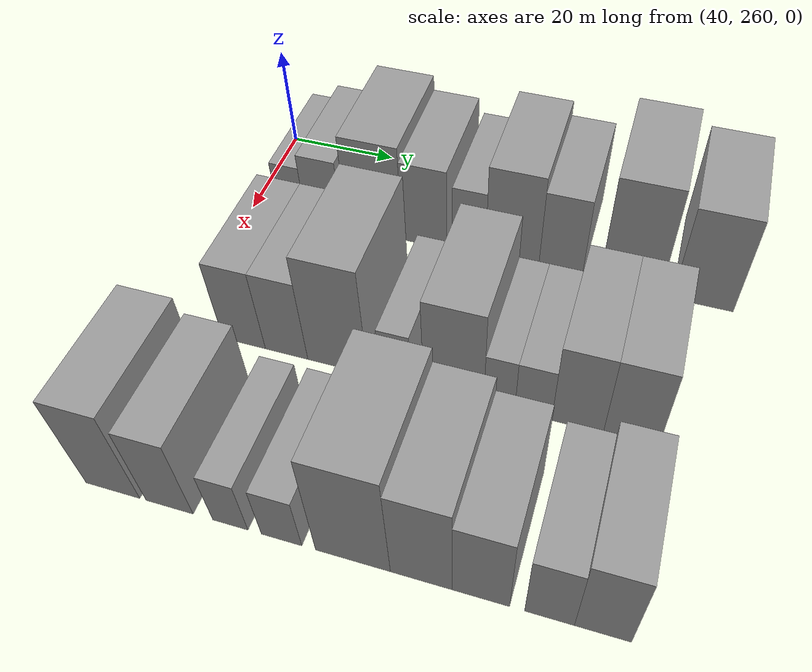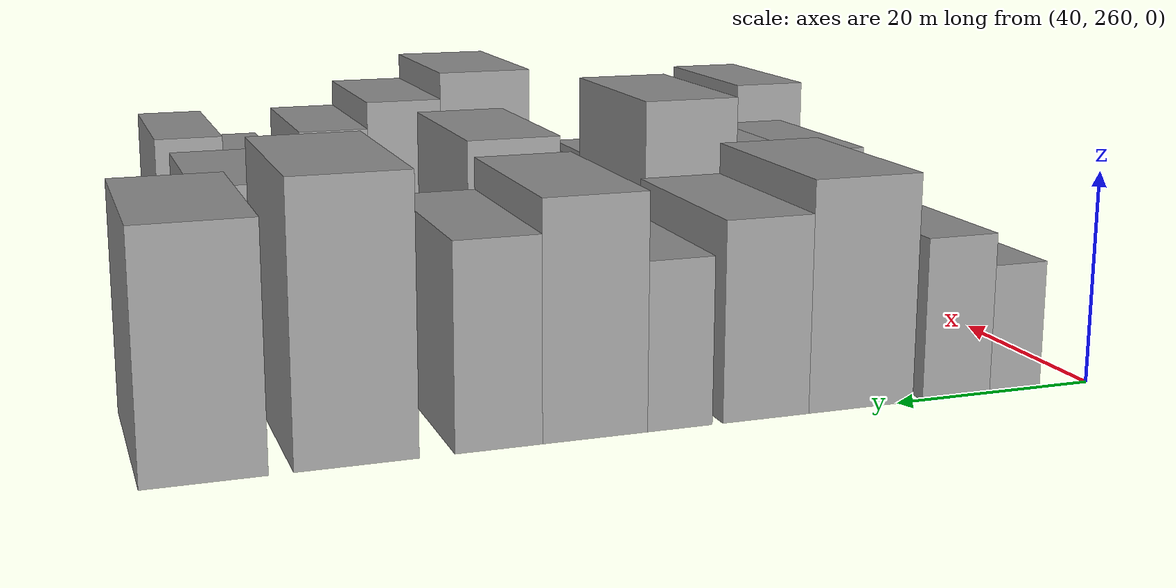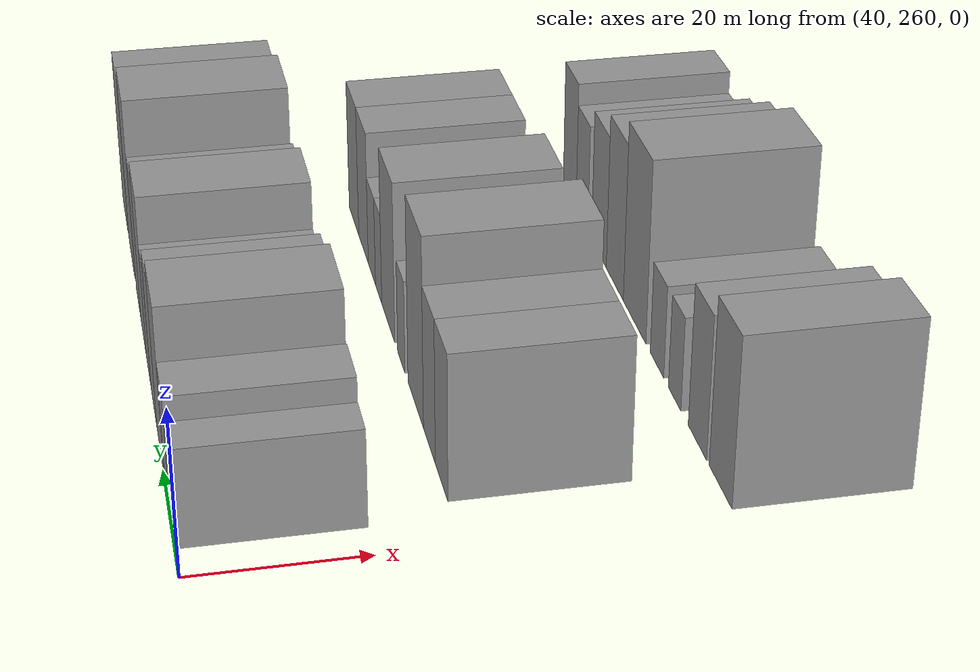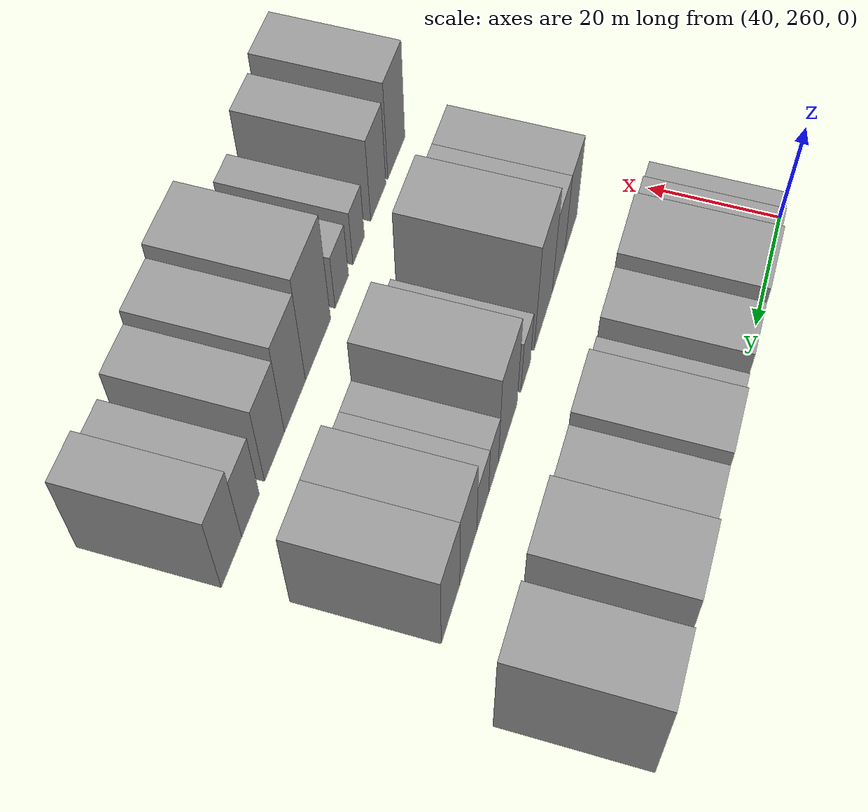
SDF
<sdf version="1.6">
 <world name="default">
  <model name="building_67">
   <static>1</static>
   <pose>50.0000 267.7553 0 0.000000 0.000000 0.000000</pose>
   <link name="link">
    <pose>0 0 6.00 0 0 0</pose>
    <collision name="collision"><geometry><box><size>20.0000 5.3422 12.0000</size></box></geometry></collision>
    <visual name="visual">
     <cast_shadows>0</cast_shadows>
     <geometry><box><size>20.0000 5.3422 12.0000</size></box></geometry>
     <material>
      <script>
       <uri>model://grey_wall/materials/scripts</uri>
       <uri>model://grey_wall/materials/textures</uri>
       <name>vrc/grey_wall</name>
      </script>
     </material>
    </visual>
   </link>
  </model>
  <model name="building_68">
   <static>1</static>
   <pose>50.0000 273.9213 0 0.000000 0.000000 0.000000</pose>
   <link name="link">
    <pose>0 0 7.50 0 0 0</pose>
    <collision name="collision"><geometry><box><size>20.0000 6.9897 15.0000</size></box></geometry></collision>
    <visual name="visual">
     <cast_shadows>0</cast_shadows>
     <geometry><box><size>20.0000 6.9897 15.0000</size></box></geometry>
     <material>
      <script>
       <uri>model://grey_wall/materials/scripts</uri>
       <uri>model://grey_wall/materials/textures</uri>
       <name>vrc/grey_wall</name>
      </script>
     </material>
    </visual>
   </link>
  </model>
  <model name="building_69">
   <static>1</static>
   <pose>50.0000 283.6248 0 0.000000 0.000000 0.000000</pose>
   <link name="link">
    <pose>0 0 10.50 0 0 0</pose>
    <collision name="collision"><geometry><box><size>20.0000 10.4175 21.0000</size></box></geometry></collision>
    <visual name="visual">
     <cast_shadows>0</cast_shadows>
     <geometry><box><size>20.0000 10.4175 21.0000</size></box></geometry>
     <material>
      <script>
       <uri>model://grey_wall/materials/scripts</uri>
       <uri>model://grey_wall/materials/textures</uri>
       <name>vrc/grey_wall</name>
      </script>
     </material>
    </visual>
   </link>
  </model>
  <model name="building_70">
   <static>1</static>
   <pose>50.0000 292.9698 0 0.000000 0.000000 0.000000</pose>
   <link name="link">
    <pose>0 0 9.00 0 0 0</pose>
    <collision name="collision"><geometry><box><size>20.0000 8.2724 18.0000</size></box></geometry></collision>
    <visual name="visual">
     <cast_shadows>0</cast_shadows>
     <geometry><box><size>20.0000 8.2724 18.0000</size></box></geometry>
     <material>
      <script>
       <uri>model://grey_wall/materials/scripts</uri>
       <uri>model://grey_wall/materials/textures</uri>
       <name>vrc/grey_wall</name>
      </script>
     </material>
    </visual>
   </link>
  </model>
  <model name="building_71">
   <static>1</static>
   <pose>50.0000 301.1170 0 0.000000 0.000000 0.000000</pose>
   <link name="link">
    <pose>0 0 7.50 0 0 0</pose>
    <collision name="collision"><geometry><box><size>20.0000 6.0219 15.0000</size></box></geometry></collision>
    <visual name="visual">
     <cast_shadows>0</cast_shadows>
     <geometry><box><size>20.0000 6.0219 15.0000</size></box></geometry>
     <material>
      <script>
       <uri>model://grey_wall/materials/scripts</uri>
       <uri>model://grey_wall/materials/textures</uri>
       <name>vrc/grey_wall</name>
      </script>
     </material>
    </visual>
   </link>
  </model>
  <model name="building_72">
   <static>1</static>
   <pose>50.0000 308.8491 0 0.000000 0.000000 0.000000</pose>
   <link name="link">
    <pose>0 0 10.50 0 0 0</pose>
    <collision name="collision"><geometry><box><size>20.0000 9.4423 21.0000</size></box></geometry></collision>
    <visual name="visual">
     <cast_shadows>0</cast_shadows>
     <geometry><box><size>20.0000 9.4423 21.0000</size></box></geometry>
     <material>
      <script>
       <uri>model://grey_wall/materials/scripts</uri>
       <uri>model://grey_wall/materials/textures</uri>
       <name>vrc/grey_wall</name>
      </script>
     </material>
    </visual>
   </link>
  </model>
  <model name="building_73">
   <static>1</static>
   <pose>50.0000 317.3691 0 0.000000 0.000000 0.000000</pose>
   <link name="link">
    <pose>0 0 9.00 0 0 0</pose>
    <collision name="collision"><geometry><box><size>20.0000 7.5978 18.0000</size></box></geometry></collision>
    <visual name="visual">
     <cast_shadows>0</cast_shadows>
     <geometry><box><size>20.0000 7.5978 18.0000</size></box></geometry>
     <material>
      <script>
       <uri>model://grey_wall/materials/scripts</uri>
       <uri>model://grey_wall/materials/textures</uri>
       <name>vrc/grey_wall</name>
      </script>
     </material>
    </visual>
   </link>
  </model>
  <model name="building_74">
   <static>1</static>
   <pose>50.0000 329.3266 0 0.000000 0.000000 0.000000</pose>
   <link name="link">
    <pose>0 0 12.00 0 0 0</pose>
    <collision name="collision"><geometry><box><size>20.0000 10.3170 24.0000</size></box></geometry></collision>
    <visual name="visual">
     <cast_shadows>0</cast_shadows>
     <geometry><box><size>20.0000 10.3170 24.0000</size></box></geometry>
     <material>
      <script>
       <uri>model://grey_wall/materials/scripts</uri>
       <uri>model://grey_wall/materials/textures</uri>
       <name>vrc/grey_wall</name>
      </script>
     </material>
    </visual>
   </link>
  </model>
  <model name="building_75">
   <static>1</static>
   <pose>50.0000 341.5349 0 0.000000 0.000000 0.000000</pose>
   <link name="link">
    <pose>0 0 10.50 0 0 0</pose>
    <collision name="collision"><geometry><box><size>20.0000 10.0997 21.0000</size></box></geometry></collision>
    <visual name="visual">
     <cast_shadows>0</cast_shadows>
     <geometry><box><size>20.0000 10.0997 21.0000</size></box></geometry>
     <material>
      <script>
       <uri>model://grey_wall/materials/scripts</uri>
       <uri>model://grey_wall/materials/textures</uri>
       <name>vrc/grey_wall</name>
      </script>
     </material>
    </visual>
   </link>
  </model>
  <model name="building_141">
   <static>1</static>
   <pose>79.0000 271.8702 0 0.000000 0.000000 0.000000</pose>
   <link name="link">
    <pose>0 0 9.00 0 0 0</pose>
    <collision name="collision"><geometry><box><size>20.0000 7.4430 18.0000</size></box></geometry></collision>
    <visual name="visual">
     <cast_shadows>0</cast_shadows>
     <geometry><box><size>20.0000 7.4430 18.0000</size></box></geometry>
     <material>
      <script>
       <uri>model://grey_wall/materials/scripts</uri>
       <uri>model://grey_wall/materials/textures</uri>
       <name>vrc/grey_wall</name>
      </script>
     </material>
    </visual>
   </link>
  </model>
  <model name="building_142">
   <static>1</static>
   <pose>79.0000 279.2369 0 0.000000 0.000000 0.000000</pose>
   <link name="link">
    <pose>0 0 9.00 0 0 0</pose>
    <collision name="collision"><geometry><box><size>20.0000 7.2904 18.0000</size></box></geometry></collision>
    <visual name="visual">
     <cast_shadows>0</cast_shadows>
     <geometry><box><size>20.0000 7.2904 18.0000</size></box></geometry>
     <material>
      <script>
       <uri>model://grey_wall/materials/scripts</uri>
       <uri>model://grey_wall/materials/textures</uri>
       <name>vrc/grey_wall</name>
      </script>
     </material>
    </visual>
   </link>
  </model>
  <model name="building_143">
   <static>1</static>
   <pose>79.0000 287.9382 0 0.000000 0.000000 0.000000</pose>
   <link name="link">
    <pose>0 0 12.00 0 0 0</pose>
    <collision name="collision"><geometry><box><size>20.0000 10.1121 24.0000</size></box></geometry></collision>
    <visual name="visual">
     <cast_shadows>0</cast_shadows>
     <geometry><box><size>20.0000 10.1121 24.0000</size></box></geometry>
     <material>
      <script>
       <uri>model://grey_wall/materials/scripts</uri>
       <uri>model://grey_wall/materials/textures</uri>
       <name>vrc/grey_wall</name>
      </script>
     </material>
    </visual>
   </link>
  </model>
  <model name="building_144">
   <static>1</static>
   <pose>79.0000 297.5555 0 0.000000 0.000000 0.000000</pose>
   <link name="link">
    <pose>0 0 6.00 0 0 0</pose>
    <collision name="collision"><geometry><box><size>20.0000 5.1225 12.0000</size></box></geometry></collision>
    <visual name="visual">
     <cast_shadows>0</cast_shadows>
     <geometry><box><size>20.0000 5.1225 12.0000</size></box></geometry>
     <material>
      <script>
       <uri>model://grey_wall/materials/scripts</uri>
       <uri>model://grey_wall/materials/textures</uri>
       <name>vrc/grey_wall</name>
      </script>
     </material>
    </visual>
   </link>
  </model>
  <model name="building_145">
   <static>1</static>
   <pose>79.0000 306.9156 0 0.000000 0.000000 0.000000</pose>
   <link name="link">
    <pose>0 0 10.50 0 0 0</pose>
    <collision name="collision"><geometry><box><size>20.0000 9.5977 21.0000</size></box></geometry></collision>
    <visual name="visual">
     <cast_shadows>0</cast_shadows>
     <geometry><box><size>20.0000 9.5977 21.0000</size></box></geometry>
     <material>
      <script>
       <uri>model://grey_wall/materials/scripts</uri>
       <uri>model://grey_wall/materials/textures</uri>
       <name>vrc/grey_wall</name>
      </script>
     </material>
    </visual>
   </link>
  </model>
  <model name="building_146">
   <static>1</static>
   <pose>79.0000 314.1349 0 0.000000 0.000000 0.000000</pose>
   <link name="link">
    <pose>0 0 6.00 0 0 0</pose>
    <collision name="collision"><geometry><box><size>20.0000 4.8409 12.0000</size></box></geometry></collision>
    <visual name="visual">
     <cast_shadows>0</cast_shadows>
     <geometry><box><size>20.0000 4.8409 12.0000</size></box></geometry>
     <material>
      <script>
       <uri>model://grey_wall/materials/scripts</uri>
       <uri>model://grey_wall/materials/textures</uri>
       <name>vrc/grey_wall</name>
      </script>
     </material>
    </visual>
   </link>
  </model>
  <model name="building_147">
   <static>1</static>
   <pose>79.0000 319.4008 0 0.000000 0.000000 0.000000</pose>
   <link name="link">
    <pose>0 0 6.00 0 0 0</pose>
    <collision name="collision"><geometry><box><size>20.0000 5.6909 12.0000</size></box></geometry></collision>
    <visual name="visual">
     <cast_shadows>0</cast_shadows>
     <geometry><box><size>20.0000 5.6909 12.0000</size></box></geometry>
     <material>
      <script>
       <uri>model://grey_wall/materials/scripts</uri>
       <uri>model://grey_wall/materials/textures</uri>
       <name>vrc/grey_wall</name>
      </script>
     </material>
    </visual>
   </link>
  </model>
  <model name="building_148">
   <static>1</static>
   <pose>79.0000 326.1610 0 0.000000 0.000000 0.000000</pose>
   <link name="link">
    <pose>0 0 9.00 0 0 0</pose>
    <collision name="collision"><geometry><box><size>20.0000 7.8294 18.0000</size></box></geometry></collision>
    <visual name="visual">
     <cast_shadows>0</cast_shadows>
     <geometry><box><size>20.0000 7.8294 18.0000</size></box></geometry>
     <material>
      <script>
       <uri>model://grey_wall/materials/scripts</uri>
       <uri>model://grey_wall/materials/textures</uri>
       <name>vrc/grey_wall</name>
      </script>
     </material>
    </visual>
   </link>
  </model>
  <model name="building_149">
   <static>1</static>
   <pose>79.0000 334.1773 0 0.000000 0.000000 0.000000</pose>
   <link name="link">
    <pose>0 0 9.00 0 0 0</pose>
    <collision name="collision"><geometry><box><size>20.0000 8.2032 18.0000</size></box></geometry></collision>
    <visual name="visual">
     <cast_shadows>0</cast_shadows>
     <geometry><box><size>20.0000 8.2032 18.0000</size></box></geometry>
     <material>
      <script>
       <uri>model://grey_wall/materials/scripts</uri>
       <uri>model://grey_wall/materials/textures</uri>
       <name>vrc/grey_wall</name>
      </script>
     </material>
    </visual>
   </link>
  </model>
  <model name="building_204">
   <static>1</static>
   <pose>108.0000 265.2117 0 0.000000 0.000000 0.000000</pose>
   <link name="link">
    <pose>0 0 10.50 0 0 0</pose>
    <collision name="collision"><geometry><box><size>20.0000 8.5655 21.0000</size></box></geometry></collision>
    <visual name="visual">
     <cast_shadows>0</cast_shadows>
     <geometry><box><size>20.0000 8.5655 21.0000</size></box></geometry>
     <material>
      <script>
       <uri>model://grey_wall/materials/scripts</uri>
       <uri>model://grey_wall/materials/textures</uri>
       <name>vrc/grey_wall</name>
      </script>
     </material>
    </visual>
   </link>
  </model>
  <model name="building_205">
   <static>1</static>
   <pose>108.0000 274.1456 0 0.000000 0.000000 0.000000</pose>
   <link name="link">
    <pose>0 0 9.00 0 0 0</pose>
    <collision name="collision"><geometry><box><size>20.0000 7.3022 18.0000</size></box></geometry></collision>
    <visual name="visual">
     <cast_shadows>0</cast_shadows>
     <geometry><box><size>20.0000 7.3022 18.0000</size></box></geometry>
     <material>
      <script>
       <uri>model://grey_wall/materials/scripts</uri>
       <uri>model://grey_wall/materials/textures</uri>
       <name>vrc/grey_wall</name>
      </script>
     </material>
    </visual>
   </link>
  </model>
  <model name="building_206">
   <static>1</static>
   <pose>108.0000 283.4515 0 0.000000 0.000000 0.000000</pose>
   <link name="link">
    <pose>0 0 6.00 0 0 0</pose>
    <collision name="collision"><geometry><box><size>20.0000 5.3095 12.0000</size></box></geometry></collision>
    <visual name="visual">
     <cast_shadows>0</cast_shadows>
     <geometry><box><size>20.0000 5.3095 12.0000</size></box></geometry>
     <material>
      <script>
       <uri>model://grey_wall/materials/scripts</uri>
       <uri>model://grey_wall/materials/textures</uri>
       <name>vrc/grey_wall</name>
      </script>
     </material>
    </visual>
   </link>
  </model>
  <model name="building_207">
   <static>1</static>
   <pose>108.0000 291.0915 0 0.000000 0.000000 0.000000</pose>
   <link name="link">
    <pose>0 0 6.00 0 0 0</pose>
    <collision name="collision"><geometry><box><size>20.0000 5.9704 12.0000</size></box></geometry></collision>
    <visual name="visual">
     <cast_shadows>0</cast_shadows>
     <geometry><box><size>20.0000 5.9704 12.0000</size></box></geometry>
     <material>
      <script>
       <uri>model://grey_wall/materials/scripts</uri>
       <uri>model://grey_wall/materials/textures</uri>
       <name>vrc/grey_wall</name>
      </script>
     </material>
    </visual>
   </link>
  </model>
  <model name="building_208">
   <static>1</static>
   <pose>108.0000 301.4215 0 0.000000 0.000000 0.000000</pose>
   <link name="link">
    <pose>0 0 12.00 0 0 0</pose>
    <collision name="collision"><geometry><box><size>20.0000 10.6896 24.0000</size></box></geometry></collision>
    <visual name="visual">
     <cast_shadows>0</cast_shadows>
     <geometry><box><size>20.0000 10.6896 24.0000</size></box></geometry>
     <material>
      <script>
       <uri>model://grey_wall/materials/scripts</uri>
       <uri>model://grey_wall/materials/textures</uri>
       <name>vrc/grey_wall</name>
      </script>
     </material>
    </visual>
   </link>
  </model>
  <model name="building_209">
   <static>1</static>
   <pose>108.0000 311.0449 0 0.000000 0.000000 0.000000</pose>
   <link name="link">
    <pose>0 0 10.50 0 0 0</pose>
    <collision name="collision"><geometry><box><size>20.0000 8.5572 21.0000</size></box></geometry></collision>
    <visual name="visual">
     <cast_shadows>0</cast_shadows>
     <geometry><box><size>20.0000 8.5572 21.0000</size></box></geometry>
     <material>
      <script>
       <uri>model://grey_wall/materials/scripts</uri>
       <uri>model://grey_wall/materials/textures</uri>
       <name>vrc/grey_wall</name>
      </script>
     </material>
    </visual>
   </link>
  </model>
  <model name="building_210">
   <static>1</static>
   <pose>108.0000 319.1988 0 0.000000 0.000000 0.000000</pose>
   <link name="link">
    <pose>0 0 9.00 0 0 0</pose>
    <collision name="collision"><geometry><box><size>20.0000 7.7506 18.0000</size></box></geometry></collision>
    <visual name="visual">
     <cast_shadows>0</cast_shadows>
     <geometry><box><size>20.0000 7.7506 18.0000</size></box></geometry>
     <material>
      <script>
       <uri>model://grey_wall/materials/scripts</uri>
       <uri>model://grey_wall/materials/textures</uri>
       <name>vrc/grey_wall</name>
      </script>
     </material>
    </visual>
   </link>
  </model>
  <model name="building_211">
   <static>1</static>
   <pose>108.0000 328.3371 0 0.000000 0.000000 0.000000</pose>
   <link name="link">
    <pose>0 0 7.50 0 0 0</pose>
    <collision name="collision"><geometry><box><size>20.0000 6.5261 15.0000</size></box></geometry></collision>
    <visual name="visual">
     <cast_shadows>0</cast_shadows>
     <geometry><box><size>20.0000 6.5261 15.0000</size></box></geometry>
     <material>
      <script>
       <uri>model://grey_wall/materials/scripts</uri>
       <uri>model://grey_wall/materials/textures</uri>
       <name>vrc/grey_wall</name>
      </script>
     </material>
    </visual>
   </link>
  </model>
  <model name="building_212">
   <static>1</static>
   <pose>108.0000 335.2682 0 0.000000 0.000000 0.000000</pose>
   <link name="link">
    <pose>0 0 9.00 0 0 0</pose>
    <collision name="collision"><geometry><box><size>20.0000 7.3361 18.0000</size></box></geometry></collision>
    <visual name="visual">
     <cast_shadows>0</cast_shadows>
     <geometry><box><size>20.0000 7.3361 18.0000</size></box></geometry>
     <material>
      <script>
       <uri>model://grey_wall/materials/scripts</uri>
       <uri>model://grey_wall/materials/textures</uri>
       <name>vrc/grey_wall</name>
      </script>
     </material>
    </visual>
   </link>
  </model>
 </world>
</sdf>
